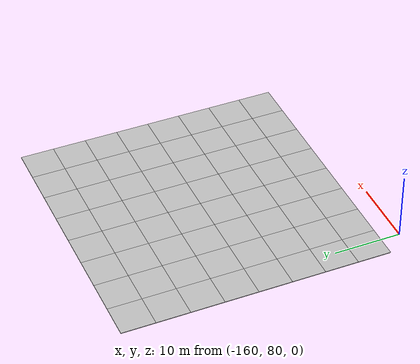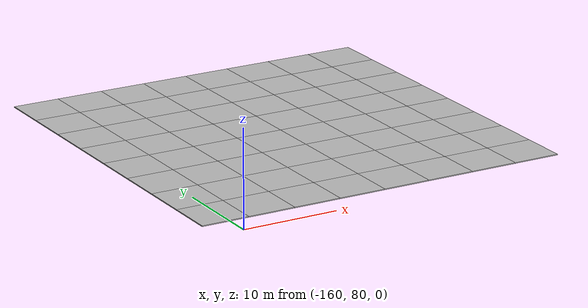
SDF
<sdf version="1.7">
 <world name="default">
  <model name="mud_plane_40x40_14">
   <model name="mud_plane_20x20">
    <model name="mud_plane">
     <static>1</static>
     <link name="link">
      <collision name="collision"><geometry><box><size>10 10 0.1</size></box></geometry></collision>
      <visual name="visual_1">
       <pose>-2.5 2.5 -0.05 0 -0 0</pose>
       <cast_shadows>0</cast_shadows>
       <geometry><box><size>5 5 0.1</size></box></geometry>
       <material>
        <script>
         <uri>model://mud_plane/materials/scripts</uri>
         <uri>model://mud_plane/materials/textures</uri>
         <name>vrc/mud</name>
        </script>
       </material>
      </visual>
      <visual name="visual_2">
       <pose>2.5 2.5 -0.05 0 -0 0</pose>
       <cast_shadows>0</cast_shadows>
       <geometry><box><size>5 5 0.1</size></box></geometry>
       <material>
        <script>
         <uri>model://mud_plane/materials/scripts</uri>
         <uri>model://mud_plane/materials/textures</uri>
         <name>vrc/mud</name>
        </script>
       </material>
      </visual>
      <visual name="visual_3">
       <pose>2.5 -2.5 -0.05 0 -0 0</pose>
       <cast_shadows>0</cast_shadows>
       <geometry><box><size>5 5 0.1</size></box></geometry>
       <material>
        <script>
         <uri>model://mud_plane/materials/scripts</uri>
         <uri>model://mud_plane/materials/textures</uri>
         <name>vrc/mud</name>
        </script>
       </material>
      </visual>
      <visual name="visual_4">
       <pose>-2.5 -2.5 -0.05 0 -0 0</pose>
       <cast_shadows>0</cast_shadows>
       <geometry><box><size>5 5 0.1</size></box></geometry>
       <material>
        <script>
         <uri>model://mud_plane/materials/scripts</uri>
         <uri>model://mud_plane/materials/textures</uri>
         <name>vrc/mud</name>
        </script>
       </material>
      </visual>
     </link>
     <pose>-4.99986 -4.99991 0 0 -0 0</pose>
    </model>
    <model name="mud_plane_0">
     <static>1</static>
     <link name="link">
      <collision name="collision"><geometry><box><size>10 10 0.1</size></box></geometry></collision>
      <visual name="visual_1">
       <pose>-2.5 2.5 -0.05 0 -0 0</pose>
       <cast_shadows>0</cast_shadows>
       <geometry><box><size>5 5 0.1</size></box></geometry>
       <material>
        <script>
         <uri>model://mud_plane/materials/scripts</uri>
         <uri>model://mud_plane/materials/textures</uri>
         <name>vrc/mud</name>
        </script>
       </material>
      </visual>
      <visual name="visual_2">
       <pose>2.5 2.5 -0.05 0 -0 0</pose>
       <cast_shadows>0</cast_shadows>
       <geometry><box><size>5 5 0.1</size></box></geometry>
       <material>
        <script>
         <uri>model://mud_plane/materials/scripts</uri>
         <uri>model://mud_plane/materials/textures</uri>
         <name>vrc/mud</name>
        </script>
       </material>
      </visual>
      <visual name="visual_3">
       <pose>2.5 -2.5 -0.05 0 -0 0</pose>
       <cast_shadows>0</cast_shadows>
       <geometry><box><size>5 5 0.1</size></box></geometry>
       <material>
        <script>
         <uri>model://mud_plane/materials/scripts</uri>
         <uri>model://mud_plane/materials/textures</uri>
         <name>vrc/mud</name>
        </script>
       </material>
      </visual>
      <visual name="visual_4">
       <pose>-2.5 -2.5 -0.05 0 -0 0</pose>
       <cast_shadows>0</cast_shadows>
       <geometry><box><size>5 5 0.1</size></box></geometry>
       <material>
        <script>
         <uri>model://mud_plane/materials/scripts</uri>
         <uri>model://mud_plane/materials/textures</uri>
         <name>vrc/mud</name>
        </script>
       </material>
      </visual>
     </link>
     <pose>-4.99946 4.99954 0 0 -0 0</pose>
    </model>
    <model name="mud_plane_1">
     <static>1</static>
     <link name="link">
      <collision name="collision"><geometry><box><size>10 10 0.1</size></box></geometry></collision>
      <visual name="visual_1">
       <pose>-2.5 2.5 -0.05 0 -0 0</pose>
       <cast_shadows>0</cast_shadows>
       <geometry><box><size>5 5 0.1</size></box></geometry>
       <material>
        <script>
         <uri>model://mud_plane/materials/scripts</uri>
         <uri>model://mud_plane/materials/textures</uri>
         <name>vrc/mud</name>
        </script>
       </material>
      </visual>
      <visual name="visual_2">
       <pose>2.5 2.5 -0.05 0 -0 0</pose>
       <cast_shadows>0</cast_shadows>
       <geometry><box><size>5 5 0.1</size></box></geometry>
       <material>
        <script>
         <uri>model://mud_plane/materials/scripts</uri>
         <uri>model://mud_plane/materials/textures</uri>
         <name>vrc/mud</name>
        </script>
       </material>
      </visual>
      <visual name="visual_3">
       <pose>2.5 -2.5 -0.05 0 -0 0</pose>
       <cast_shadows>0</cast_shadows>
       <geometry><box><size>5 5 0.1</size></box></geometry>
       <material>
        <script>
         <uri>model://mud_plane/materials/scripts</uri>
         <uri>model://mud_plane/materials/textures</uri>
         <name>vrc/mud</name>
        </script>
       </material>
      </visual>
      <visual name="visual_4">
       <pose>-2.5 -2.5 -0.05 0 -0 0</pose>
       <cast_shadows>0</cast_shadows>
       <geometry><box><size>5 5 0.1</size></box></geometry>
       <material>
        <script>
         <uri>model://mud_plane/materials/scripts</uri>
         <uri>model://mud_plane/materials/textures</uri>
         <name>vrc/mud</name>
        </script>
       </material>
      </visual>
     </link>
     <pose>4.99964 -4.99949 0 0 -0 0</pose>
    </model>
    <model name="mud_plane_2">
     <static>1</static>
     <link name="link">
      <collision name="collision"><geometry><box><size>10 10 0.1</size></box></geometry></collision>
      <visual name="visual_1">
       <pose>-2.5 2.5 -0.05 0 -0 0</pose>
       <cast_shadows>0</cast_shadows>
       <geometry><box><size>5 5 0.1</size></box></geometry>
       <material>
        <script>
         <uri>model://mud_plane/materials/scripts</uri>
         <uri>model://mud_plane/materials/textures</uri>
         <name>vrc/mud</name>
        </script>
       </material>
      </visual>
      <visual name="visual_2">
       <pose>2.5 2.5 -0.05 0 -0 0</pose>
       <cast_shadows>0</cast_shadows>
       <geometry><box><size>5 5 0.1</size></box></geometry>
       <material>
        <script>
         <uri>model://mud_plane/materials/scripts</uri>
         <uri>model://mud_plane/materials/textures</uri>
         <name>vrc/mud</name>
        </script>
       </material>
      </visual>
      <visual name="visual_3">
       <pose>2.5 -2.5 -0.05 0 -0 0</pose>
       <cast_shadows>0</cast_shadows>
       <geometry><box><size>5 5 0.1</size></box></geometry>
       <material>
        <script>
         <uri>model://mud_plane/materials/scripts</uri>
         <uri>model://mud_plane/materials/textures</uri>
         <name>vrc/mud</name>
        </script>
       </material>
      </visual>
      <visual name="visual_4">
       <pose>-2.5 -2.5 -0.05 0 -0 0</pose>
       <cast_shadows>0</cast_shadows>
       <geometry><box><size>5 5 0.1</size></box></geometry>
       <material>
        <script>
         <uri>model://mud_plane/materials/scripts</uri>
         <uri>model://mud_plane/materials/textures</uri>
         <name>vrc/mud</name>
        </script>
       </material>
      </visual>
     </link>
     <pose>4.99967 4.99986 0 0 -0 0</pose>
    </model>
    <static>0</static>
    <pose>-9.99895 9.99843 0 0 -0 0</pose>
   </model>
   <model name="mud_plane_20x20_0">
    <model name="mud_plane">
     <static>1</static>
     <link name="link">
      <collision name="collision"><geometry><box><size>10 10 0.1</size></box></geometry></collision>
      <visual name="visual_1">
       <pose>-2.5 2.5 -0.05 0 -0 0</pose>
       <cast_shadows>0</cast_shadows>
       <geometry><box><size>5 5 0.1</size></box></geometry>
       <material>
        <script>
         <uri>model://mud_plane/materials/scripts</uri>
         <uri>model://mud_plane/materials/textures</uri>
         <name>vrc/mud</name>
        </script>
       </material>
      </visual>
      <visual name="visual_2">
       <pose>2.5 2.5 -0.05 0 -0 0</pose>
       <cast_shadows>0</cast_shadows>
       <geometry><box><size>5 5 0.1</size></box></geometry>
       <material>
        <script>
         <uri>model://mud_plane/materials/scripts</uri>
         <uri>model://mud_plane/materials/textures</uri>
         <name>vrc/mud</name>
        </script>
       </material>
      </visual>
      <visual name="visual_3">
       <pose>2.5 -2.5 -0.05 0 -0 0</pose>
       <cast_shadows>0</cast_shadows>
       <geometry><box><size>5 5 0.1</size></box></geometry>
       <material>
        <script>
         <uri>model://mud_plane/materials/scripts</uri>
         <uri>model://mud_plane/materials/textures</uri>
         <name>vrc/mud</name>
        </script>
       </material>
      </visual>
      <visual name="visual_4">
       <pose>-2.5 -2.5 -0.05 0 -0 0</pose>
       <cast_shadows>0</cast_shadows>
       <geometry><box><size>5 5 0.1</size></box></geometry>
       <material>
        <script>
         <uri>model://mud_plane/materials/scripts</uri>
         <uri>model://mud_plane/materials/textures</uri>
         <name>vrc/mud</name>
        </script>
       </material>
      </visual>
     </link>
     <pose>-4.99986 -4.99991 0 0 -0 0</pose>
    </model>
    <model name="mud_plane_0">
     <static>1</static>
     <link name="link">
      <collision name="collision"><geometry><box><size>10 10 0.1</size></box></geometry></collision>
      <visual name="visual_1">
       <pose>-2.5 2.5 -0.05 0 -0 0</pose>
       <cast_shadows>0</cast_shadows>
       <geometry><box><size>5 5 0.1</size></box></geometry>
       <material>
        <script>
         <uri>model://mud_plane/materials/scripts</uri>
         <uri>model://mud_plane/materials/textures</uri>
         <name>vrc/mud</name>
        </script>
       </material>
      </visual>
      <visual name="visual_2">
       <pose>2.5 2.5 -0.05 0 -0 0</pose>
       <cast_shadows>0</cast_shadows>
       <geometry><box><size>5 5 0.1</size></box></geometry>
       <material>
        <script>
         <uri>model://mud_plane/materials/scripts</uri>
         <uri>model://mud_plane/materials/textures</uri>
         <name>vrc/mud</name>
        </script>
       </material>
      </visual>
      <visual name="visual_3">
       <pose>2.5 -2.5 -0.05 0 -0 0</pose>
       <cast_shadows>0</cast_shadows>
       <geometry><box><size>5 5 0.1</size></box></geometry>
       <material>
        <script>
         <uri>model://mud_plane/materials/scripts</uri>
         <uri>model://mud_plane/materials/textures</uri>
         <name>vrc/mud</name>
        </script>
       </material>
      </visual>
      <visual name="visual_4">
       <pose>-2.5 -2.5 -0.05 0 -0 0</pose>
       <cast_shadows>0</cast_shadows>
       <geometry><box><size>5 5 0.1</size></box></geometry>
       <material>
        <script>
         <uri>model://mud_plane/materials/scripts</uri>
         <uri>model://mud_plane/materials/textures</uri>
         <name>vrc/mud</name>
        </script>
       </material>
      </visual>
     </link>
     <pose>-4.99946 4.99954 0 0 -0 0</pose>
    </model>
    <model name="mud_plane_1">
     <static>1</static>
     <link name="link">
      <collision name="collision"><geometry><box><size>10 10 0.1</size></box></geometry></collision>
      <visual name="visual_1">
       <pose>-2.5 2.5 -0.05 0 -0 0</pose>
       <cast_shadows>0</cast_shadows>
       <geometry><box><size>5 5 0.1</size></box></geometry>
       <material>
        <script>
         <uri>model://mud_plane/materials/scripts</uri>
         <uri>model://mud_plane/materials/textures</uri>
         <name>vrc/mud</name>
        </script>
       </material>
      </visual>
      <visual name="visual_2">
       <pose>2.5 2.5 -0.05 0 -0 0</pose>
       <cast_shadows>0</cast_shadows>
       <geometry><box><size>5 5 0.1</size></box></geometry>
       <material>
        <script>
         <uri>model://mud_plane/materials/scripts</uri>
         <uri>model://mud_plane/materials/textures</uri>
         <name>vrc/mud</name>
        </script>
       </material>
      </visual>
      <visual name="visual_3">
       <pose>2.5 -2.5 -0.05 0 -0 0</pose>
       <cast_shadows>0</cast_shadows>
       <geometry><box><size>5 5 0.1</size></box></geometry>
       <material>
        <script>
         <uri>model://mud_plane/materials/scripts</uri>
         <uri>model://mud_plane/materials/textures</uri>
         <name>vrc/mud</name>
        </script>
       </material>
      </visual>
      <visual name="visual_4">
       <pose>-2.5 -2.5 -0.05 0 -0 0</pose>
       <cast_shadows>0</cast_shadows>
       <geometry><box><size>5 5 0.1</size></box></geometry>
       <material>
        <script>
         <uri>model://mud_plane/materials/scripts</uri>
         <uri>model://mud_plane/materials/textures</uri>
         <name>vrc/mud</name>
        </script>
       </material>
      </visual>
     </link>
     <pose>4.99964 -4.99949 0 0 -0 0</pose>
    </model>
    <model name="mud_plane_2">
     <static>1</static>
     <link name="link">
      <collision name="collision"><geometry><box><size>10 10 0.1</size></box></geometry></collision>
      <visual name="visual_1">
       <pose>-2.5 2.5 -0.05 0 -0 0</pose>
       <cast_shadows>0</cast_shadows>
       <geometry><box><size>5 5 0.1</size></box></geometry>
       <material>
        <script>
         <uri>model://mud_plane/materials/scripts</uri>
         <uri>model://mud_plane/materials/textures</uri>
         <name>vrc/mud</name>
        </script>
       </material>
      </visual>
      <visual name="visual_2">
       <pose>2.5 2.5 -0.05 0 -0 0</pose>
       <cast_shadows>0</cast_shadows>
       <geometry><box><size>5 5 0.1</size></box></geometry>
       <material>
        <script>
         <uri>model://mud_plane/materials/scripts</uri>
         <uri>model://mud_plane/materials/textures</uri>
         <name>vrc/mud</name>
        </script>
       </material>
      </visual>
      <visual name="visual_3">
       <pose>2.5 -2.5 -0.05 0 -0 0</pose>
       <cast_shadows>0</cast_shadows>
       <geometry><box><size>5 5 0.1</size></box></geometry>
       <material>
        <script>
         <uri>model://mud_plane/materials/scripts</uri>
         <uri>model://mud_plane/materials/textures</uri>
         <name>vrc/mud</name>
        </script>
       </material>
      </visual>
      <visual name="visual_4">
       <pose>-2.5 -2.5 -0.05 0 -0 0</pose>
       <cast_shadows>0</cast_shadows>
       <geometry><box><size>5 5 0.1</size></box></geometry>
       <material>
        <script>
         <uri>model://mud_plane/materials/scripts</uri>
         <uri>model://mud_plane/materials/textures</uri>
         <name>vrc/mud</name>
        </script>
       </material>
      </visual>
     </link>
     <pose>4.99967 4.99986 0 0 -0 0</pose>
    </model>
    <static>0</static>
    <pose>9.99933 9.9997 0 0 -0 0</pose>
   </model>
   <model name="mud_plane_20x20_1">
    <model name="mud_plane">
     <static>1</static>
     <link name="link">
      <collision name="collision"><geometry><box><size>10 10 0.1</size></box></geometry></collision>
      <visual name="visual_1">
       <pose>-2.5 2.5 -0.05 0 -0 0</pose>
       <cast_shadows>0</cast_shadows>
       <geometry><box><size>5 5 0.1</size></box></geometry>
       <material>
        <script>
         <uri>model://mud_plane/materials/scripts</uri>
         <uri>model://mud_plane/materials/textures</uri>
         <name>vrc/mud</name>
        </script>
       </material>
      </visual>
      <visual name="visual_2">
       <pose>2.5 2.5 -0.05 0 -0 0</pose>
       <cast_shadows>0</cast_shadows>
       <geometry><box><size>5 5 0.1</size></box></geometry>
       <material>
        <script>
         <uri>model://mud_plane/materials/scripts</uri>
         <uri>model://mud_plane/materials/textures</uri>
         <name>vrc/mud</name>
        </script>
       </material>
      </visual>
      <visual name="visual_3">
       <pose>2.5 -2.5 -0.05 0 -0 0</pose>
       <cast_shadows>0</cast_shadows>
       <geometry><box><size>5 5 0.1</size></box></geometry>
       <material>
        <script>
         <uri>model://mud_plane/materials/scripts</uri>
         <uri>model://mud_plane/materials/textures</uri>
         <name>vrc/mud</name>
        </script>
       </material>
      </visual>
      <visual name="visual_4">
       <pose>-2.5 -2.5 -0.05 0 -0 0</pose>
       <cast_shadows>0</cast_shadows>
       <geometry><box><size>5 5 0.1</size></box></geometry>
       <material>
        <script>
         <uri>model://mud_plane/materials/scripts</uri>
         <uri>model://mud_plane/materials/textures</uri>
         <name>vrc/mud</name>
        </script>
       </material>
      </visual>
     </link>
     <pose>-4.99986 -4.99991 0 0 -0 0</pose>
    </model>
    <model name="mud_plane_0">
     <static>1</static>
     <link name="link">
      <collision name="collision"><geometry><box><size>10 10 0.1</size></box></geometry></collision>
      <visual name="visual_1">
       <pose>-2.5 2.5 -0.05 0 -0 0</pose>
       <cast_shadows>0</cast_shadows>
       <geometry><box><size>5 5 0.1</size></box></geometry>
       <material>
        <script>
         <uri>model://mud_plane/materials/scripts</uri>
         <uri>model://mud_plane/materials/textures</uri>
         <name>vrc/mud</name>
        </script>
       </material>
      </visual>
      <visual name="visual_2">
       <pose>2.5 2.5 -0.05 0 -0 0</pose>
       <cast_shadows>0</cast_shadows>
       <geometry><box><size>5 5 0.1</size></box></geometry>
       <material>
        <script>
         <uri>model://mud_plane/materials/scripts</uri>
         <uri>model://mud_plane/materials/textures</uri>
         <name>vrc/mud</name>
        </script>
       </material>
      </visual>
      <visual name="visual_3">
       <pose>2.5 -2.5 -0.05 0 -0 0</pose>
       <cast_shadows>0</cast_shadows>
       <geometry><box><size>5 5 0.1</size></box></geometry>
       <material>
        <script>
         <uri>model://mud_plane/materials/scripts</uri>
         <uri>model://mud_plane/materials/textures</uri>
         <name>vrc/mud</name>
        </script>
       </material>
      </visual>
      <visual name="visual_4">
       <pose>-2.5 -2.5 -0.05 0 -0 0</pose>
       <cast_shadows>0</cast_shadows>
       <geometry><box><size>5 5 0.1</size></box></geometry>
       <material>
        <script>
         <uri>model://mud_plane/materials/scripts</uri>
         <uri>model://mud_plane/materials/textures</uri>
         <name>vrc/mud</name>
        </script>
       </material>
      </visual>
     </link>
     <pose>-4.99946 4.99954 0 0 -0 0</pose>
    </model>
    <model name="mud_plane_1">
     <static>1</static>
     <link name="link">
      <collision name="collision"><geometry><box><size>10 10 0.1</size></box></geometry></collision>
      <visual name="visual_1">
       <pose>-2.5 2.5 -0.05 0 -0 0</pose>
       <cast_shadows>0</cast_shadows>
       <geometry><box><size>5 5 0.1</size></box></geometry>
       <material>
        <script>
         <uri>model://mud_plane/materials/scripts</uri>
         <uri>model://mud_plane/materials/textures</uri>
         <name>vrc/mud</name>
        </script>
       </material>
      </visual>
      <visual name="visual_2">
       <pose>2.5 2.5 -0.05 0 -0 0</pose>
       <cast_shadows>0</cast_shadows>
       <geometry><box><size>5 5 0.1</size></box></geometry>
       <material>
        <script>
         <uri>model://mud_plane/materials/scripts</uri>
         <uri>model://mud_plane/materials/textures</uri>
         <name>vrc/mud</name>
        </script>
       </material>
      </visual>
      <visual name="visual_3">
       <pose>2.5 -2.5 -0.05 0 -0 0</pose>
       <cast_shadows>0</cast_shadows>
       <geometry><box><size>5 5 0.1</size></box></geometry>
       <material>
        <script>
         <uri>model://mud_plane/materials/scripts</uri>
         <uri>model://mud_plane/materials/textures</uri>
         <name>vrc/mud</name>
        </script>
       </material>
      </visual>
      <visual name="visual_4">
       <pose>-2.5 -2.5 -0.05 0 -0 0</pose>
       <cast_shadows>0</cast_shadows>
       <geometry><box><size>5 5 0.1</size></box></geometry>
       <material>
        <script>
         <uri>model://mud_plane/materials/scripts</uri>
         <uri>model://mud_plane/materials/textures</uri>
         <name>vrc/mud</name>
        </script>
       </material>
      </visual>
     </link>
     <pose>4.99964 -4.99949 0 0 -0 0</pose>
    </model>
    <model name="mud_plane_2">
     <static>1</static>
     <link name="link">
      <collision name="collision"><geometry><box><size>10 10 0.1</size></box></geometry></collision>
      <visual name="visual_1">
       <pose>-2.5 2.5 -0.05 0 -0 0</pose>
       <cast_shadows>0</cast_shadows>
       <geometry><box><size>5 5 0.1</size></box></geometry>
       <material>
        <script>
         <uri>model://mud_plane/materials/scripts</uri>
         <uri>model://mud_plane/materials/textures</uri>
         <name>vrc/mud</name>
        </script>
       </material>
      </visual>
      <visual name="visual_2">
       <pose>2.5 2.5 -0.05 0 -0 0</pose>
       <cast_shadows>0</cast_shadows>
       <geometry><box><size>5 5 0.1</size></box></geometry>
       <material>
        <script>
         <uri>model://mud_plane/materials/scripts</uri>
         <uri>model://mud_plane/materials/textures</uri>
         <name>vrc/mud</name>
        </script>
       </material>
      </visual>
      <visual name="visual_3">
       <pose>2.5 -2.5 -0.05 0 -0 0</pose>
       <cast_shadows>0</cast_shadows>
       <geometry><box><size>5 5 0.1</size></box></geometry>
       <material>
        <script>
         <uri>model://mud_plane/materials/scripts</uri>
         <uri>model://mud_plane/materials/textures</uri>
         <name>vrc/mud</name>
        </script>
       </material>
      </visual>
      <visual name="visual_4">
       <pose>-2.5 -2.5 -0.05 0 -0 0</pose>
       <cast_shadows>0</cast_shadows>
       <geometry><box><size>5 5 0.1</size></box></geometry>
       <material>
        <script>
         <uri>model://mud_plane/materials/scripts</uri>
         <uri>model://mud_plane/materials/textures</uri>
         <name>vrc/mud</name>
        </script>
       </material>
      </visual>
     </link>
     <pose>4.99967 4.99986 0 0 -0 0</pose>
    </model>
    <static>0</static>
    <pose>9.9993 -9.99877 0 0 -0 0</pose>
   </model>
   <model name="mud_plane_20x20_2">
    <model name="mud_plane">
     <static>1</static>
     <link name="link">
      <collision name="collision"><geometry><box><size>10 10 0.1</size></box></geometry></collision>
      <visual name="visual_1">
       <pose>-2.5 2.5 -0.05 0 -0 0</pose>
       <cast_shadows>0</cast_shadows>
       <geometry><box><size>5 5 0.1</size></box></geometry>
       <material>
        <script>
         <uri>model://mud_plane/materials/scripts</uri>
         <uri>model://mud_plane/materials/textures</uri>
         <name>vrc/mud</name>
        </script>
       </material>
      </visual>
      <visual name="visual_2">
       <pose>2.5 2.5 -0.05 0 -0 0</pose>
       <cast_shadows>0</cast_shadows>
       <geometry><box><size>5 5 0.1</size></box></geometry>
       <material>
        <script>
         <uri>model://mud_plane/materials/scripts</uri>
         <uri>model://mud_plane/materials/textures</uri>
         <name>vrc/mud</name>
        </script>
       </material>
      </visual>
      <visual name="visual_3">
       <pose>2.5 -2.5 -0.05 0 -0 0</pose>
       <cast_shadows>0</cast_shadows>
       <geometry><box><size>5 5 0.1</size></box></geometry>
       <material>
        <script>
         <uri>model://mud_plane/materials/scripts</uri>
         <uri>model://mud_plane/materials/textures</uri>
         <name>vrc/mud</name>
        </script>
       </material>
      </visual>
      <visual name="visual_4">
       <pose>-2.5 -2.5 -0.05 0 -0 0</pose>
       <cast_shadows>0</cast_shadows>
       <geometry><box><size>5 5 0.1</size></box></geometry>
       <material>
        <script>
         <uri>model://mud_plane/materials/scripts</uri>
         <uri>model://mud_plane/materials/textures</uri>
         <name>vrc/mud</name>
        </script>
       </material>
      </visual>
     </link>
     <pose>-4.99986 -4.99991 0 0 -0 0</pose>
    </model>
    <model name="mud_plane_0">
     <static>1</static>
     <link name="link">
      <collision name="collision"><geometry><box><size>10 10 0.1</size></box></geometry></collision>
      <visual name="visual_1">
       <pose>-2.5 2.5 -0.05 0 -0 0</pose>
       <cast_shadows>0</cast_shadows>
       <geometry><box><size>5 5 0.1</size></box></geometry>
       <material>
        <script>
         <uri>model://mud_plane/materials/scripts</uri>
         <uri>model://mud_plane/materials/textures</uri>
         <name>vrc/mud</name>
        </script>
       </material>
      </visual>
      <visual name="visual_2">
       <pose>2.5 2.5 -0.05 0 -0 0</pose>
       <cast_shadows>0</cast_shadows>
       <geometry><box><size>5 5 0.1</size></box></geometry>
       <material>
        <script>
         <uri>model://mud_plane/materials/scripts</uri>
         <uri>model://mud_plane/materials/textures</uri>
         <name>vrc/mud</name>
        </script>
       </material>
      </visual>
      <visual name="visual_3">
       <pose>2.5 -2.5 -0.05 0 -0 0</pose>
       <cast_shadows>0</cast_shadows>
       <geometry><box><size>5 5 0.1</size></box></geometry>
       <material>
        <script>
         <uri>model://mud_plane/materials/scripts</uri>
         <uri>model://mud_plane/materials/textures</uri>
         <name>vrc/mud</name>
        </script>
       </material>
      </visual>
      <visual name="visual_4">
       <pose>-2.5 -2.5 -0.05 0 -0 0</pose>
       <cast_shadows>0</cast_shadows>
       <geometry><box><size>5 5 0.1</size></box></geometry>
       <material>
        <script>
         <uri>model://mud_plane/materials/scripts</uri>
         <uri>model://mud_plane/materials/textures</uri>
         <name>vrc/mud</name>
        </script>
       </material>
      </visual>
     </link>
     <pose>-4.99946 4.99954 0 0 -0 0</pose>
    </model>
    <model name="mud_plane_1">
     <static>1</static>
     <link name="link">
      <collision name="collision"><geometry><box><size>10 10 0.1</size></box></geometry></collision>
      <visual name="visual_1">
       <pose>-2.5 2.5 -0.05 0 -0 0</pose>
       <cast_shadows>0</cast_shadows>
       <geometry><box><size>5 5 0.1</size></box></geometry>
       <material>
        <script>
         <uri>model://mud_plane/materials/scripts</uri>
         <uri>model://mud_plane/materials/textures</uri>
         <name>vrc/mud</name>
        </script>
       </material>
      </visual>
      <visual name="visual_2">
       <pose>2.5 2.5 -0.05 0 -0 0</pose>
       <cast_shadows>0</cast_shadows>
       <geometry><box><size>5 5 0.1</size></box></geometry>
       <material>
        <script>
         <uri>model://mud_plane/materials/scripts</uri>
         <uri>model://mud_plane/materials/textures</uri>
         <name>vrc/mud</name>
        </script>
       </material>
      </visual>
      <visual name="visual_3">
       <pose>2.5 -2.5 -0.05 0 -0 0</pose>
       <cast_shadows>0</cast_shadows>
       <geometry><box><size>5 5 0.1</size></box></geometry>
       <material>
        <script>
         <uri>model://mud_plane/materials/scripts</uri>
         <uri>model://mud_plane/materials/textures</uri>
         <name>vrc/mud</name>
        </script>
       </material>
      </visual>
      <visual name="visual_4">
       <pose>-2.5 -2.5 -0.05 0 -0 0</pose>
       <cast_shadows>0</cast_shadows>
       <geometry><box><size>5 5 0.1</size></box></geometry>
       <material>
        <script>
         <uri>model://mud_plane/materials/scripts</uri>
         <uri>model://mud_plane/materials/textures</uri>
         <name>vrc/mud</name>
        </script>
       </material>
      </visual>
     </link>
     <pose>4.99964 -4.99949 0 0 -0 0</pose>
    </model>
    <model name="mud_plane_2">
     <static>1</static>
     <link name="link">
      <collision name="collision"><geometry><box><size>10 10 0.1</size></box></geometry></collision>
      <visual name="visual_1">
       <pose>-2.5 2.5 -0.05 0 -0 0</pose>
       <cast_shadows>0</cast_shadows>
       <geometry><box><size>5 5 0.1</size></box></geometry>
       <material>
        <script>
         <uri>model://mud_plane/materials/scripts</uri>
         <uri>model://mud_plane/materials/textures</uri>
         <name>vrc/mud</name>
        </script>
       </material>
      </visual>
      <visual name="visual_2">
       <pose>2.5 2.5 -0.05 0 -0 0</pose>
       <cast_shadows>0</cast_shadows>
       <geometry><box><size>5 5 0.1</size></box></geometry>
       <material>
        <script>
         <uri>model://mud_plane/materials/scripts</uri>
         <uri>model://mud_plane/materials/textures</uri>
         <name>vrc/mud</name>
        </script>
       </material>
      </visual>
      <visual name="visual_3">
       <pose>2.5 -2.5 -0.05 0 -0 0</pose>
       <cast_shadows>0</cast_shadows>
       <geometry><box><size>5 5 0.1</size></box></geometry>
       <material>
        <script>
         <uri>model://mud_plane/materials/scripts</uri>
         <uri>model://mud_plane/materials/textures</uri>
         <name>vrc/mud</name>
        </script>
       </material>
      </visual>
      <visual name="visual_4">
       <pose>-2.5 -2.5 -0.05 0 -0 0</pose>
       <cast_shadows>0</cast_shadows>
       <geometry><box><size>5 5 0.1</size></box></geometry>
       <material>
        <script>
         <uri>model://mud_plane/materials/scripts</uri>
         <uri>model://mud_plane/materials/textures</uri>
         <name>vrc/mud</name>
        </script>
       </material>
      </visual>
     </link>
     <pose>4.99967 4.99986 0 0 -0 0</pose>
    </model>
    <static>0</static>
    <pose>-9.99969 -9.99935 0 0 -0 0</pose>
   </model>
   <static>0</static>
   <pose>-142.833 102.874 0 0 -0 0</pose>
  </model>
 </world>
</sdf>
